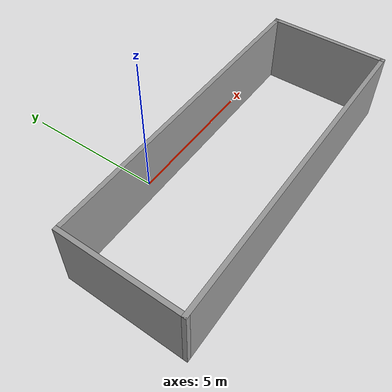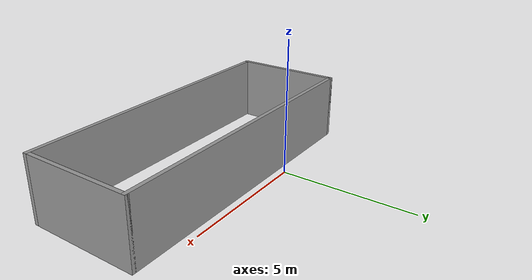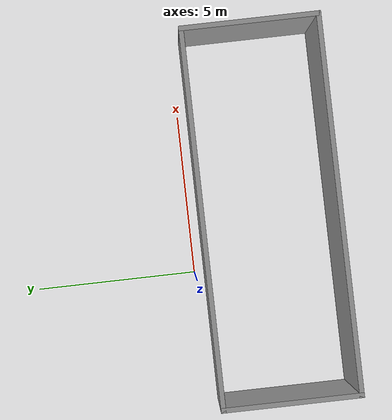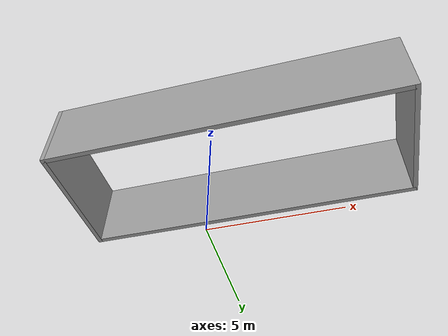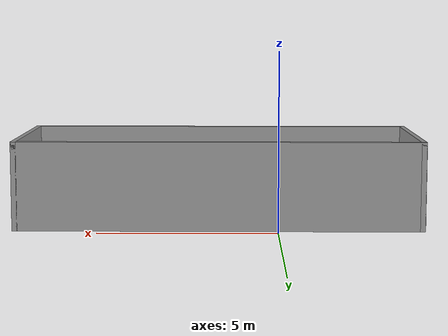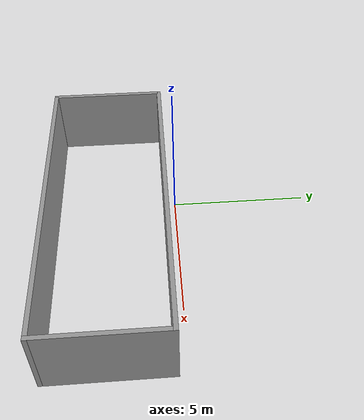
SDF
<?xml version='1.0'?>
<sdf version='1.7'>
  <model name='Basic_Box'>
    <pose>1.655 -2.2725 0 0 -0 0</pose>
    <link name='Wall_0'>
      <collision name='Wall_0_Collision'>
        <geometry>
          <box>
            <size>11.5 0.15 2.5</size>
          </box>
        </geometry>
        <pose>0 0 1.25 0 -0 0</pose>
      </collision>
      <visual name='Wall_0_Visual'>
        <pose>0 0 1.25 0 -0 0</pose>
        <geometry>
          <box>
            <size>11.5 0.15 2.5</size>
          </box>
        </geometry>
        <material>
          <script>
            <uri>file://media/materials/scripts/gazebo.material</uri>
            <name>Gazebo/Grey</name>
          </script>
          <ambient>1 1 1 1</ambient>
        </material>
        <meta>
          <layer>0</layer>
        </meta>
      </visual>
      <pose>0 1.9025 0 0 -0 0</pose>
    </link>
    <link name='Wall_1'>
      <collision name='Wall_1_Collision'>
        <geometry>
          <box>
            <size>4.25 0.15 2.5</size>
          </box>
        </geometry>
        <pose>0 0 1.25 0 -0 0</pose>
      </collision>
      <visual name='Wall_1_Visual'>
        <pose>0 0 1.25 0 -0 0</pose>
        <geometry>
          <box>
            <size>4.25 0.15 2.5</size>
          </box>
        </geometry>
        <material>
          <script>
            <uri>file://media/materials/scripts/gazebo.material</uri>
            <name>Gazebo/Grey</name>
          </script>
          <ambient>1 1 1 1</ambient>
        </material>
        <meta>
          <layer>0</layer>
        </meta>
      </visual>
      <pose>5.675 -0.1475 0 0 -0 -1.5708</pose>
    </link>
    <link name='Wall_2'>
      <collision name='Wall_2_Collision'>
        <geometry>
          <box>
            <size>11.5 0.15 2.5</size>
          </box>
        </geometry>
        <pose>0 0 1.25 0 -0 0</pose>
      </collision>
      <visual name='Wall_2_Visual'>
        <pose>0 0 1.25 0 -0 0</pose>
        <geometry>
          <box>
            <size>11.5 0.15 2.5</size>
          </box>
        </geometry>
        <material>
          <script>
            <uri>file://media/materials/scripts/gazebo.material</uri>
            <name>Gazebo/Grey</name>
          </script>
          <ambient>1 1 1 1</ambient>
        </material>
        <meta>
          <layer>0</layer>
        </meta>
      </visual>
      <pose>0 -2.1975 0 0 -0 3.14159</pose>
    </link>
    <link name='Wall_3'>
      <collision name='Wall_3_Collision'>
        <geometry>
          <box>
            <size>4.25 0.15 2.5</size>
          </box>
        </geometry>
        <pose>0 0 1.25 0 -0 0</pose>
      </collision>
      <visual name='Wall_3_Visual'>
        <pose>0 0 1.25 0 -0 0</pose>
        <geometry>
          <box>
            <size>4.25 0.15 2.5</size>
          </box>
        </geometry>
        <material>
          <script>
            <uri>file://media/materials/scripts/gazebo.material</uri>
            <name>Gazebo/Grey</name>
          </script>
          <ambient>1 1 1 1</ambient>
        </material>
        <meta>
          <layer>0</layer>
        </meta>
      </visual>
      <pose>-5.675 -0.1475 0 0 -0 1.5708</pose>
    </link>
    <static>1</static>
  </model>
</sdf>
